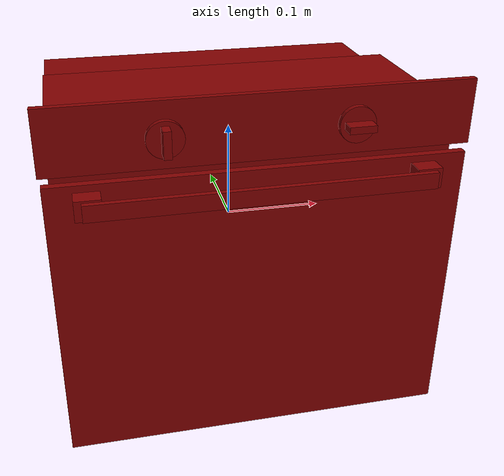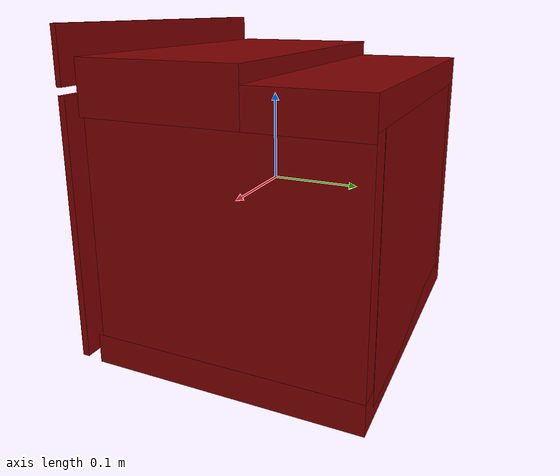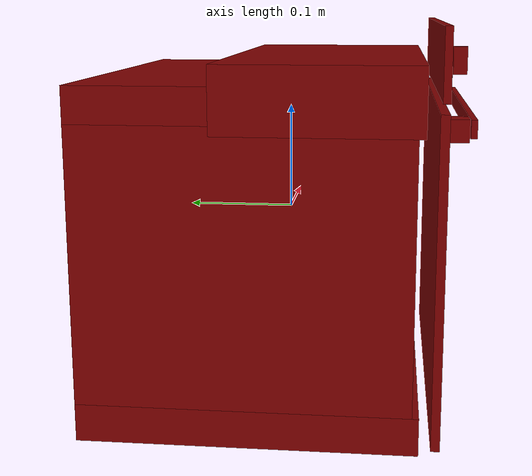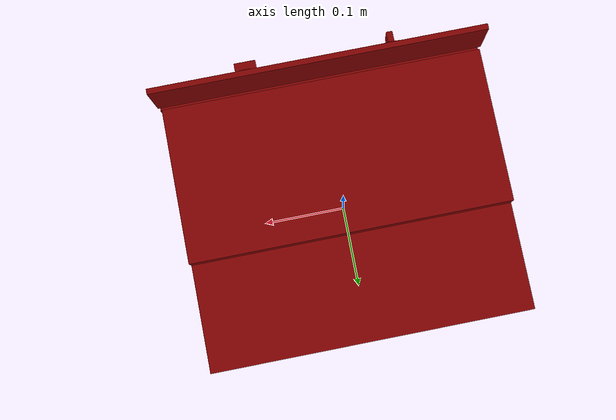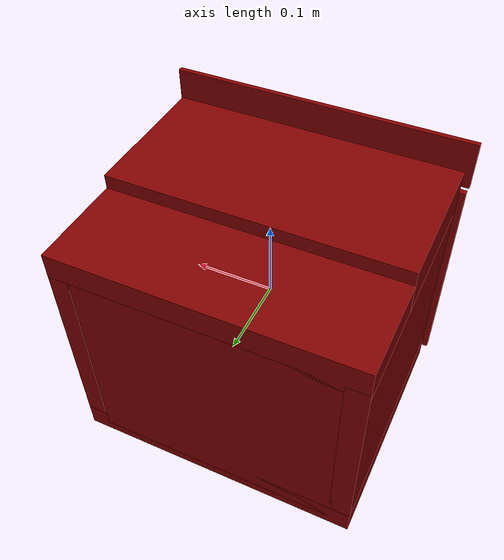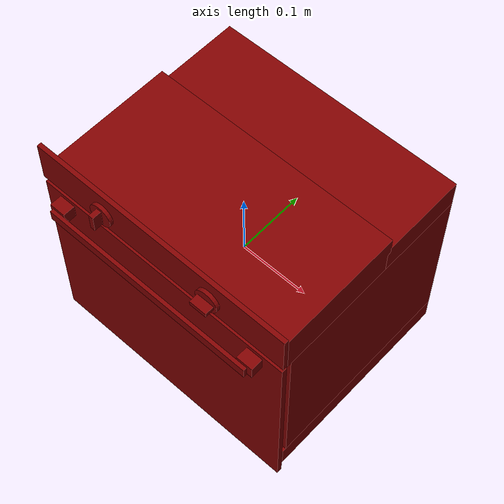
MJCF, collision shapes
<?xml version='1.0' encoding='UTF-8'?>
<mujoco model="model">
  <option timestep="0.002" gravity="0.0 0.0 -9.81"/>
  <compiler angle="radian"/>
  <asset>
    <mesh file="visuals/door.obj" name="door_vis"/>
    <mesh file="visuals/door_Clear.obj" name="door_Clear_vis"/>
    <mesh file="visuals/knob_temp.obj" name="knob_temp_vis"/>
    <mesh file="visuals/knob_time.obj" name="knob_time_vis"/>
    <mesh file="visuals/Body001.obj" name="Body001_vis"/>
    <mesh file="visuals/rack0.obj" name="rack0_vis"/>
    <texture file="visuals/T_BC001.png" name="Body001_material" type="2d"/>
    <material name="Body001_material" rgba="1 1 1 1.0" texture="Body001_material" shininess="0.1" specular="6"/>
    <texture file="visuals/T_BC001.png" name="door_material" type="2d"/>
    <material name="door_material" rgba="1 1 1 1.0" texture="door_material" shininess="0.1" specular="6"/>
    <texture file="visuals/T_BC001.png" name="door_Clear_material" type="2d"/>
    <material name="door_Clear_material" rgba="1 1 1 0.8741580843925476" texture="door_Clear_material" shininess="0.1" specular="0.3103448502657381"/>
    <texture file="visuals/T_BC001.png" name="knob_temp_material" type="2d"/>
    <material name="knob_temp_material" rgba="1 1 1 1.0" texture="knob_temp_material" shininess="0.1" specular="6"/>
    <texture file="visuals/T_BC001.png" name="knob_time_material" type="2d"/>
    <material name="knob_time_material" rgba="1 1 1 1.0" texture="knob_time_material" shininess="0.1" specular="6"/>
    <texture file="visuals/T_BC001.png" name="rack0_material" type="2d"/>
    <material name="rack0_material" rgba="1 1 1 1.0" texture="rack0_material" shininess="0.1" specular="6"/>
  </asset>
  <default>
    <default class="visual">
      <geom conaffinity="0" contype="0" group="1" type="mesh"/>
    </default>
    <default class="collision">
      <geom group="0" rgba="0.5 0 0 0.5"/>
    </default>
    <default class="spawn">
      <geom group="0" rgba="1 1 1 0.5" contype="0" conaffinity="0"/>
      <site group="0" rgba="1 1 1 0.5"/>
    </default>
    <default class="region">
      <geom group="1" conaffinity="0" contype="0" rgba="0 1 0 0"/>
    </default>
  </default>
  <worldbody>
    <body>
      <body name="object">
        <geom mesh="Body001_vis" type="mesh" solimp="0.998 0.998 0.001" solref="0.001 1" friction="0.95 0.3 0.1" class="visual" material="Body001_material"/>
        <geom class="collision" type="box" pos="0.16895869374275208 0.02483323961496353 -0.025591721758246422" size="0.012403721921145916 0.14517877995967865 0.1265033334493637" quat="1.0 0.0 0.0 0.0"/>
        <geom class="collision" type="box" pos="-3.2335345167666674e-05 0.02190033346414566 -0.1596214473247528" size="0.18139483034610748 0.1481117159128189 0.016680654138326645" quat="1.0 0.0 0.0 0.0"/>
        <geom class="collision" type="box" pos="1.3525699671390612e-08 -0.1405254602432251 0.15140904486179352" size="0.1896449327468872 0.0031471436377614737 0.029807239770889282" quat="1.0 0.0 0.0 0.0"/>
        <geom class="collision" type="box" pos="-0.16825246810913086 0.02483341097831726 -0.025591721758246422" size="0.013174684718251228 0.1451786458492279 0.12650294601917267" quat="1.0 0.0 0.0 0.0"/>
        <geom class="collision" type="box" pos="-3.234483301639557e-05 -0.038449641317129135 0.12148404121398926" size="0.18139483034610748 0.08776114135980606 0.0289723239839077" quat="1.0 0.0 0.0 0.0"/>
        <geom class="collision" type="box" pos="-0.001496658893302083 0.14180874824523926 -0.03106185421347618" size="0.028203289955854416 0.15675640106201172 0.1319734752178192" quat="0.7071068286895752 0.0 0.0 -0.7071067094802856"/>
        <geom class="collision" type="box" pos="-0.15346500277519226 -0.013520173728466034 0.013071944937109947" size="0.001742657506838441 0.10742674767971039 0.003695391584187746" quat="1.0 0.0 0.0 0.0"/>
        <geom class="collision" type="box" pos="-0.15346500277519226 -0.013520173728466034 0.035659439861774445" size="0.001742657506838441 0.10742674767971039 0.003695391584187746" quat="1.0 0.0 0.0 0.0"/>
        <geom class="collision" type="box" pos="-0.15346500277519226 -0.013520173728466034 -0.035219620913267136" size="0.001742657506838441 0.10742674767971039 0.003695391584187746" quat="1.0 0.0 0.0 0.0"/>
        <geom class="collision" type="box" pos="-0.15346500277519226 -0.013520173728466034 -0.011804744601249695" size="0.001742657506838441 0.10742674767971039 0.0024656422901898623" quat="1.0 0.0 0.0 0.0"/>
        <geom class="collision" type="box" pos="-0.15346500277519226 -0.013520173728466034 -0.06023961305618286" size="0.001742657506838441 0.10742674767971039 0.003695391584187746" quat="1.0 0.0 0.0 0.0"/>
        <geom class="collision" type="box" pos="-0.15346500277519226 -0.013520173728466034 -0.08499153703451157" size="0.001742657506838441 0.10742674767971039 0.003695391584187746" quat="1.0 0.0 0.0 0.0"/>
        <geom class="collision" type="box" pos="-0.15346500277519226 -0.013520173728466034 -0.11000581085681915" size="0.001742657506838441 0.10742674767971039 0.003695391584187746" quat="1.0 0.0 0.0 0.0"/>
        <geom class="collision" type="box" pos="0.15507954359054565 -0.013520173728466034 0.013071944937109947" size="0.001742657506838441 0.10742674767971039 0.003695391584187746" quat="1.0 0.0 0.0 0.0"/>
        <geom class="collision" type="box" pos="0.15507954359054565 -0.013520173728466034 0.035659439861774445" size="0.001742657506838441 0.10742674767971039 0.003695391584187746" quat="1.0 0.0 0.0 0.0"/>
        <geom class="collision" type="box" pos="0.15507954359054565 -0.013520173728466034 -0.035219620913267136" size="0.001742657506838441 0.10742674767971039 0.003695391584187746" quat="1.0 0.0 0.0 0.0"/>
        <geom class="collision" type="box" pos="0.15507954359054565 -0.013520173728466034 -0.011804744601249695" size="0.001742657506838441 0.10742674767971039 0.0024656422901898623" quat="1.0 0.0 0.0 0.0"/>
        <geom class="collision" type="box" pos="0.15507954359054565 -0.013520173728466034 -0.06023961305618286" size="0.001742657506838441 0.10742674767971039 0.003695391584187746" quat="1.0 0.0 0.0 0.0"/>
        <geom class="collision" type="box" pos="0.15507954359054565 -0.013520173728466034 -0.08499153703451157" size="0.001742657506838441 0.10742674767971039 0.003695391584187746" quat="1.0 0.0 0.0 0.0"/>
        <geom class="collision" type="box" pos="0.15507954359054565 -0.013520173728466034 -0.11000581085681915" size="0.001742657506838441 0.10742674767971039 0.003695391584187746" quat="1.0 0.0 0.0 0.0"/>
        <geom class="collision" type="box" pos="-3.234483301639557e-05 0.1071166843175888 0.11265077441930771" size="0.18139483034610748 0.06289529800415039 0.02013905718922615" quat="1.0 0.0 0.0 0.0"/>
        <body name="door">
          <joint axis="1.0 0.0 0.0" pos="0.000304662884445861 -0.14286888693459332 -0.1629643626511097" limited="true" name="door_joint" range="0.0 1.15" type="hinge" damping="1" frictionloss="1" armature="1" stiffness="2"/>
          <geom mesh="door_vis" type="mesh" solimp="0.998 0.998 0.001" solref="0.001 1" friction="0.95 0.3 0.1" class="visual" material="door_material"/>
          <geom class="collision" type="box" pos="0.0005794368335045874 -0.14147663116455078 -0.02285677194595337" size="0.15922340750694275 0.0016341737937182188 0.10935982316732407" quat="7.549790126404332e-08 1.0 0.0 0.0"/>
          <geom class="collision" type="box" pos="0.00030466262251138687 -0.1399126499891281 -0.02749863639473915" size="0.18813085556030273 0.0038378213066607714 0.14075730741024017" quat="1.0 0.0 0.0 0.0"/>
          <geom class="collision" type="box" pos="-0.15143123269081116 -0.1520247608423233 0.09731122851371765" size="0.011516321450471878 0.008796263486146927 0.009480617940425873" quat="1.0 0.0 0.0 0.0"/>
          <geom class="collision" type="box" pos="-0.0015559429302811623 -0.16479822993278503 0.09796787798404694" size="0.15497693419456482 0.002627516398206353 0.00769991846755147" quat="1.0 0.0 0.0 0.0" name="door_handle_main"/>
          <geom class="collision" type="box" pos="0.14800935983657837 -0.1520247608423233 0.09731122851371765" size="0.011516321450471878 0.008796263486146927 0.009480617940425873" quat="1.0 0.0 0.0 0.0"/>
          <geom class="collision" type="box" pos="0.000304662884445861 -0.14173085987567902 -0.02749863639473915" size="0.1810583621263504 0.0011380270589143038 0.13546572625637054" quat="1.0 0.0 0.0 0.0" name="door_main"/>
          <body name="door_Clear">
            <geom mesh="door_Clear_vis" type="mesh" solimp="0.998 0.998 0.001" solref="0.001 1" friction="0.95 0.3 0.1" class="visual" material="door_Clear_material"/>
            <geom class="collision" type="box" pos="0.0005794368335045874 -0.14147663116455078 -0.02285677194595337" size="0.15922340750694275 0.0016341737937182188 0.10935982316732407" quat="7.549790126404332e-08 1.0 0.0 0.0"/>
          </body>
        </body>
        <body name="knob_temp">
          <joint axis="0.0 1.0 0.0" pos="0.08120852708816528 -0.15255695581436157 0.14925526082515717" limited="true" name="knob_temp_joint" range="0.0 3.3161255787892263" type="hinge" damping="0.05" frictionloss="0.75" armature="1"/>
          <geom mesh="knob_temp_vis" type="mesh" solimp="0.998 0.998 0.001" solref="0.001 1" friction="0.95 0.3 0.1" class="visual" material="knob_temp_material"/>
          <geom class="collision" type="cylinder" pos="0.08104325830936432 -0.14701291918754578 0.1491992324590683" size="0.0164551492780447 0.0026130429469048977" quat="0.7071067094802856 0.70710688829422 -1.5700926965105832e-16 1.2790030626010778e-23" friction="100 0.5 0.01"/>
          <geom class="collision" type="box" pos="0.08104325085878372 -0.15562035143375397 0.1491992324590683" size="0.0031734127551317215 0.00680219242349267 0.012094465084373951" quat="0.70710688829422 -4.7503021960437763e-08 -0.7071066498756409 -4.750300774958305e-08" name="knob_temp_main" friction="100 0.5 0.01"/>
        </body>
        <body name="knob_time">
          <joint axis="0.0 1.0 0.0" pos="-0.08455713093280792 -0.15255695581436157 0.14925526082515717" limited="true" name="knob_time_joint" range="0.0 4.014257279586958" type="hinge" damping="0.05" frictionloss="0.75" armature="1"/>
          <geom mesh="knob_time_vis" type="mesh" solimp="0.998 0.998 0.001" solref="0.001 1" friction="0.95 0.3 0.1" class="visual" material="knob_time_material"/>
          <geom class="collision" type="cylinder" pos="-0.08440103381872177 -0.14701291918754578 0.1491992324590683" size="0.0164551492780447 0.0026130429469048977" quat="0.7071067094802856 0.70710688829422 -1.5700926965105832e-16 1.2790030626010778e-23" friction="100 0.5 0.01"/>
          <geom class="collision" type="box" pos="-0.08440103381872177 -0.15562035143375397 0.1491992324590683" size="0.003487643552944064 0.00680219242349267 0.012094465084373951" quat="1.0 0.0 0.0 0.0" name="knob_time_main" friction="100 0.5 0.01"/>
        </body>
        <body name="rack0">
          <geom class="region" name="reg_rack0" type="box" pos="0.001338571310043335 -0.012067511677742004 0.043949879705905914" size="0.14824066853523254 0.10366026854515076 0.043801633477211"/>
          <joint axis="0.0 -1.0 0.0" pos="0.00018445616296958178 -0.012357360683381557 -0.0068151094019412994" limited="true" name="rack0_joint" range="0.0 0.18" type="slide" damping="1" frictionloss="1" armature=".01" stiffness="0.05"/>
          <geom mesh="rack0_vis" type="mesh" solimp="0.998 0.998 0.001" solref="0.001 1" friction="0.95 0.3 0.1" class="visual" material="rack0_material"/>
          <geom class="collision" type="box" pos="8.940696716308594e-08 -0.011785699054598808 -0.006878375541418791" size="0.1499941647052765 0.10604356974363327 0.001393897458910942" quat="1.0 0.0 0.0 0.0"/>
        </body>
        <geom class="region" name="reg_int" type="box" pos="0.0005485787987709045 -0.011316753923892975 -0.024738598614931107" size="0.15024468845129013 0.11976200884580612 0.11284520646929741"/>
        <geom class="region" name="reg_main" type="box" pos="0.0 0.013130798935890198 0.0" size="0.1906449327468872 0.15788127279281616 0.1822162697315216"/>
      </body>
    </body>
  </worldbody>
  <actuator>
    <motor name="door_joint_actuator" joint="door_joint" gear="50"/>
    <motor name="knob_temp_joint_actuator" joint="knob_temp_joint" gear="50"/>
    <motor name="knob_time_joint_actuator" joint="knob_time_joint" gear="50"/>
    <motor name="rack0_joint_actuator" joint="rack0_joint" gear="50"/>
  </actuator>
</mujoco>
